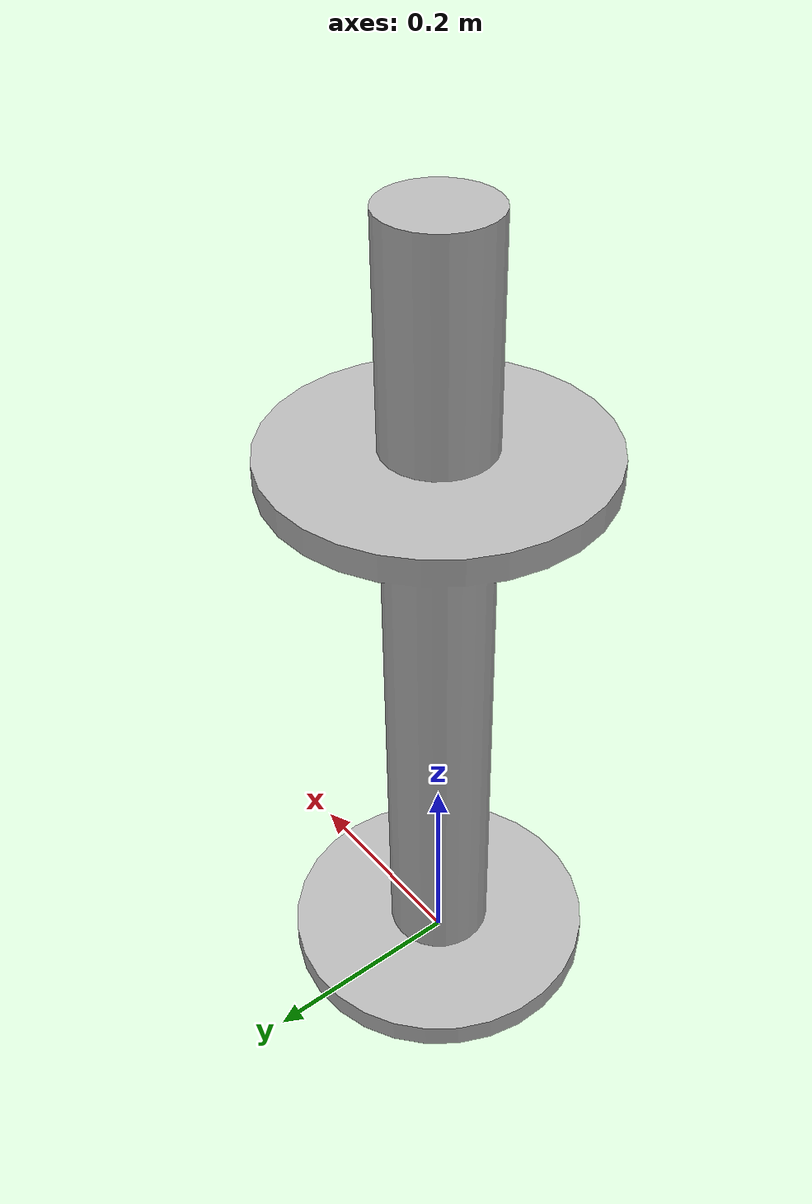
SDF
<?xml version="1.0"?>
<sdf version="1.6">
  <model name="abu_pole_small">
      <pose>0 0 0  0 0 0</pose>
      <static>true</static>
      <link name="body">
        <visual name="visual">
          <geometry>
            <mesh><uri>model://abu_pole_small/meshes/abu_pole_small.dae</uri></mesh>
          </geometry>
        </visual>
      </link>
 </model>
</sdf>
